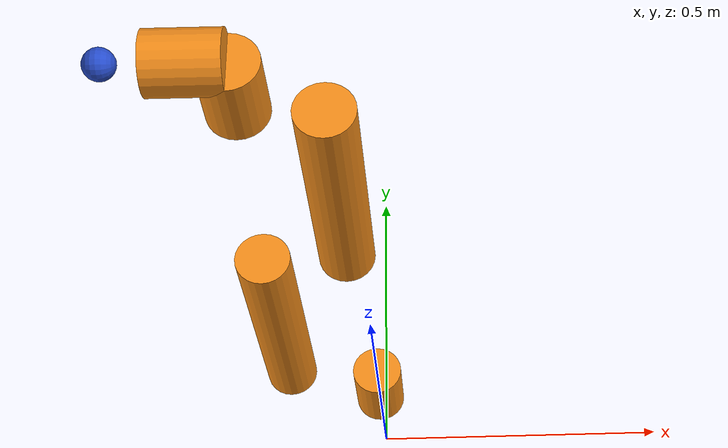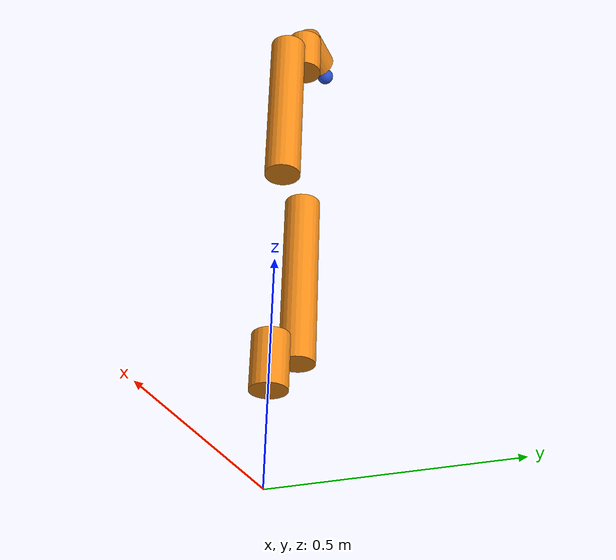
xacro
<?xml version="1.0"?>
<!-- Revolute-Revolute Manipulator -->
<robot name="robot" xmlns:xacro="http://www.ros.org/wiki/xacro">

  <!-- Import shared components -->
  <xacro:include filename="$(find robot_sim)/urdf/shared.xacro" />

  <!-- ros_control plugin -->
  <gazebo>
    <plugin name="gazebo_ros_control" filename="libgazebo_ros_control.so">
      <robotNamespace>/robot</robotNamespace>
      <robotSimType>gazebo_ros_control/DefaultRobotHWSim</robotSimType>
    </plugin>
  </gazebo>

  <!-- Constants for robot dimensions -->
  <xacro:property name="link_radius" value="0.04" />

  <xacro:property name="offset_x" value="0" />
  <xacro:property name="offset_y" value="0" />
  <xacro:property name="offset_z" value="0.2" />

  <xacro:property name="link0_length" value="0.1215" />
  <xacro:property name="link1_length" value="0.408" />
  <xacro:property name="link2_length" value="0.376" />
  <xacro:property name="link3_length" value="0.1025" />
  <xacro:property name="link4_length" value="0.094" />
  <xacro:property name="effector_length" value="0.05" />

  <xacro:property name="link1_d" value="-0.1405" />
  <xacro:property name="link2_d" value="0.1215" />
  <xacro:property name="link3_d" value="-0.1025" />

  <xacro:property name="joint0_low" value="-0.000006" />
  <xacro:property name="joint0_high" value="3.053448" />
  <xacro:property name="joint1_low" value="-1.571984" />
  <xacro:property name="joint1_high" value="1.571984" />
  <xacro:property name="joint2_low" value="-1.529065" />
  <xacro:property name="joint2_high" value="1.571069" />
  <xacro:property name="joint3_low" value="-0.785398" />
  <xacro:property name="joint3_high" value="0.785398" />
  <xacro:property name="joint4_low" value="-3.053450" />
  <xacro:property name="joint4_high" value="3.053439" />

  <xacro:property name="joint_effort_lim" value="2000" />
  <xacro:property name="joint_velocity_lim" value="15" />

  <!-- Enable self-collision -->
  <gazebo>
    <self_collide>false</self_collide>
  </gazebo>

  <!-- World link -->
  <link name="world"/>

  <!-- Joint 0 -->
  <joint name="joint0" type="revolute">
    <parent link="world"/>
    <child link="link0"/>
    <origin xyz="${offset_x} ${offset_y} ${offset_z}" rpy="0 0 ${-pi/2}"/>
    <axis xyz="0 0 1"/>
    <limit lower="${joint0_low}" upper="${joint0_high}" effort="${joint_effort_lim}" velocity="${joint_velocity_lim}"/>
    <dynamics damping="0.7"/>
  </joint>

  <transmission name="tran0">
    <type>transmission_interface/SimpleTransmission</type>
    <joint name="joint0">
      <hardwareInterface>hardware_interface/PositionJointInterface</hardwareInterface>
    </joint>
    <actuator name="motor0">
      <hardwareInterface>hardware_interface/PositionJointInterface</hardwareInterface>
      <mechanicalReduction>1</mechanicalReduction>
    </actuator>
  </transmission>

  <!-- Link 0 -->
  <link name="link0">

    <visual>
      <origin xyz="0 0 ${link0_length/2}" rpy="0 0 0"/>
      <geometry>
	      <cylinder radius="${link_radius}" length="${link0_length}" />
      </geometry>
      <material name="orange"/>
    </visual>

    <inertial>
      <origin xyz="0 0 ${link0_length/2}" rpy="0 0 0" />
      <mass value="1.0"/>
      <inertia
        ixx="1.0" ixy="0.0" ixz="0.0"
        iyy="1.0" iyz="0.0"
        izz="1.0"/>
    </inertial>
  </link>

  <gazebo reference="link0">
    <material>Gazebo/Orange</material>
  </gazebo>

  <!-- Joint 1 -->
  <joint name="joint1" type="revolute">
    <parent link="link0" />
    <child link="link1" />
    <origin xyz="0 ${link1_d} ${link0_length}" rpy="0 0 0" />
    <axis xyz="0 1 0" />
    <limit lower="${joint1_low}" upper="${joint1_high}" effort="${joint_effort_lim}" velocity="${joint_velocity_lim}"/>
    <dynamics damping="0.5" />
  </joint>

  <transmission name="tran1">
    <type>transmission_interface/SimpleTransmission</type>
    <joint name="joint1">
      <hardwareInterface>hardware_interface/PositionJointInterface</hardwareInterface>
    </joint>
    <actuator name="motor1">
      <hardwareInterface>hardware_interface/PositionJointInterface</hardwareInterface>
      <mechanicalReduction>1</mechanicalReduction>
    </actuator>
  </transmission>

  <!-- Link 1 -->
  <link name="link1">
    <collision>
      <origin xyz="0 0 ${link1_length/2}" rpy="0 0 0"/>
      <geometry>
	      <cylinder radius="${link_radius}" length="${link1_length}" />
      </geometry>
    </collision>

    <visual>
      <origin xyz="0 0 ${link1_length/2}" rpy="0 0 0"/>
      <geometry>
	      <cylinder radius="${link_radius}" length="${link1_length}" />
      </geometry>
      <material name="orange"/>
    </visual>

    <inertial>
      <origin xyz="0 0 ${link1_length/2}" rpy="0 0 0"/>
      <mass value="1.0"/>
      <inertia
        ixx="1.0" ixy="0.0" ixz="0.0"
        iyy="1.0" iyz="0.0"
        izz="1.0"/>
    </inertial>
  </link>

  <gazebo reference="link1">
    <material>Gazebo/Orange</material>
  </gazebo>

  <gazebo reference="link1">
    <sensor name="link1_contact_sensor" type="contact">
      <always_on>true</always_on>
      <update_rate>${sensor_update_rate}</update_rate>
      <visualize>false</visualize>
      <contact>
        <collision>link1_collision</collision>
      </contact>
      <plugin name="gazebo_ros_bumper_controller" filename="libgazebo_ros_bumper.so">
        <bumperTopicName>/link1_bumper</bumperTopicName>
      </plugin>
    </sensor>
  </gazebo>

  <!-- Joint 2 -->
  <joint name="joint2" type="revolute">
    <parent link="link1" />
    <child link="link2" />
    <origin xyz="0 ${link2_d} ${link1_length}" rpy="0 0 0" />
    <axis xyz="0 1 0" />
    <limit lower="${joint2_low}" upper="${joint2_high}" effort="${joint_effort_lim}" velocity="${joint_velocity_lim}"/>
    <dynamics damping="0.5" />
  </joint>

  <transmission name="tran2">
    <type>transmission_interface/SimpleTransmission</type>
    <joint name="joint2">
      <hardwareInterface>hardware_interface/PositionJointInterface</hardwareInterface>
    </joint>
    <actuator name="motor2">
      <hardwareInterface>hardware_interface/PositionJointInterface</hardwareInterface>
      <mechanicalReduction>1</mechanicalReduction>
    </actuator>
  </transmission>

  <!-- Link 2 -->
  <link name="link2">
    <collision>
      <origin xyz="0 0 ${link2_length/2}" rpy="0 0 0"/>
      <geometry>
	      <cylinder radius="${link_radius}" length="${link2_length}" />
      </geometry>
    </collision>

    <visual>
      <origin xyz="0 0 ${link2_length/2}" rpy="0 0 0"/>
      <geometry>
	      <cylinder radius="${link_radius}" length="${link2_length}" />
      </geometry>
      <material name="orange"/>
    </visual>

    <inertial>
      <origin xyz="0 0 ${link2_length/2}" rpy="0 0 0"/>
      <mass value="1.0"/>
      <inertia
        ixx="1.0" ixy="0.0" ixz="0.0"
        iyy="1.0" iyz="0.0"
        izz="1.0"/>
    </inertial>
  </link>

  <gazebo reference="link2">
    <material>Gazebo/Orange</material>
  </gazebo>

  <gazebo reference="link2">
    <sensor name="link2_contact_sensor" type="contact">
      <always_on>true</always_on>
      <update_rate>${sensor_update_rate}</update_rate>
      <visualize>false</visualize>
      <contact>
        <collision>link2_collision</collision>
      </contact>
      <plugin name="gazebo_ros_bumper_controller" filename="libgazebo_ros_bumper.so">
        <bumperTopicName>/link2_bumper</bumperTopicName>
      </plugin>
    </sensor>
  </gazebo>

  <!-- Joint 3 -->
  <joint name="joint3" type="revolute">
    <parent link="link2" />
    <child link="link3" />
    <origin xyz="0 ${link3_d} ${link2_length}" rpy="0 0 0" />
    <axis xyz="0 1 0" />
    <limit lower="${joint3_low}" upper="${joint3_high}" effort="${joint_effort_lim}" velocity="${joint_velocity_lim}"/>
    <dynamics damping="0.5" />
  </joint>

  <transmission name="tran3">
    <type>transmission_interface/SimpleTransmission</type>
    <joint name="joint3">
      <hardwareInterface>hardware_interface/PositionJointInterface</hardwareInterface>
    </joint>
    <actuator name="motor3">
      <hardwareInterface>hardware_interface/PositionJointInterface</hardwareInterface>
      <mechanicalReduction>1</mechanicalReduction>
    </actuator>
  </transmission>

  <!-- Link 3 -->
  <link name="link3">
    <collision>
      <origin xyz="0 0 ${link3_length/2}" rpy="0 0 0"/>
      <geometry>
	      <cylinder radius="${link_radius}" length="${link3_length}" />
      </geometry>
    </collision>

    <visual>
      <origin xyz="0 0 ${link3_length/2}" rpy="0 0 0"/>
      <geometry>
	      <cylinder radius="${link_radius}" length="${link3_length}" />
      </geometry>
      <material name="orange"/>
    </visual>

    <inertial>
      <origin xyz="0 0 ${link3_length/2}" rpy="0 0 0"/>
      <mass value="1.0"/>
      <inertia
        ixx="1.0" ixy="0.0" ixz="0.0"
        iyy="1.0" iyz="0.0"
        izz="1.0"/>
    </inertial>
  </link>

  <gazebo reference="link3">
    <material>Gazebo/Orange</material>
  </gazebo>

  <gazebo reference="link3">
    <sensor name="link3_contact_sensor" type="contact">
      <always_on>true</always_on>
      <update_rate>${sensor_update_rate}</update_rate>
      <visualize>false</visualize>
      <contact>
        <collision>link3_collision</collision>
      </contact>
      <plugin name="gazebo_ros_bumper_controller" filename="libgazebo_ros_bumper.so">
        <bumperTopicName>/link3_bumper</bumperTopicName>
      </plugin>
    </sensor>
  </gazebo>

  <!-- Joint 4 -->
  <joint name="joint4" type="revolute">
    <parent link="link3" />
    <child link="link4" />
    <origin xyz="0 0 ${link3_length}" rpy="${PI/2} 0 0" />
    <axis xyz="0 1 0" />
    <limit lower="${joint4_low}" upper="${joint4_high}" effort="${joint_effort_lim}" velocity="${joint_velocity_lim}"/>
    <dynamics damping="0.5" />
  </joint>

  <transmission name="tran4">
    <type>transmission_interface/SimpleTransmission</type>
    <joint name="joint4">
      <hardwareInterface>hardware_interface/PositionJointInterface</hardwareInterface>
    </joint>
    <actuator name="motor4">
      <hardwareInterface>hardware_interface/PositionJointInterface</hardwareInterface>
      <mechanicalReduction>1</mechanicalReduction>
    </actuator>
  </transmission>

  <!-- Link 4 -->
  <link name="link4">
    <collision>
      <origin xyz="0 0 ${link4_length/2}" rpy="0 0 0"/>
      <geometry>
	      <cylinder radius="${link_radius}" length="${link4_length}" />
      </geometry>
    </collision>

    <visual>
      <origin xyz="0 0 ${link4_length/2}" rpy="0 0 0"/>
      <geometry>
	      <cylinder radius="${link_radius}" length="${link4_length}" />
      </geometry>
      <material name="orange"/>
    </visual>

    <inertial>
      <origin xyz="0 0 ${link4_length/2}" rpy="0 0 0"/>
      <mass value="1.0"/>
      <inertia
        ixx="1.0" ixy="0.0" ixz="0.0"
        iyy="1.0" iyz="0.0"
        izz="1.0"/>
    </inertial>
  </link>

  <gazebo reference="link4">
    <material>Gazebo/Orange</material>
  </gazebo>

  <gazebo reference="link4">
    <sensor name="link4_contact_sensor" type="contact">
      <always_on>true</always_on>
      <update_rate>${sensor_update_rate}</update_rate>
      <visualize>false</visualize>
      <contact>
        <collision>link4_collision</collision>
      </contact>
      <plugin name="gazebo_ros_bumper_controller" filename="libgazebo_ros_bumper.so">
        <bumperTopicName>/link4_bumper</bumperTopicName>
      </plugin>
    </sensor>
  </gazebo>

  <!-- Joint 5 -->
  <joint name="joint5" type="continuous">
    <parent link="link4" />
    <child link="effector" />
    <origin xyz="0 0 ${link4_length + effector_length}" rpy="0 0 0" />
    <axis xyz="0 0 1" />
    <dynamics damping="0.5" />
  </joint>

  <!-- Effector -->
  <link name="effector">
    <visual>
      <origin xyz="0 0 0" rpy="0 0 0" />
      <geometry>
	      <sphere radius="${marker_point_radius}" />
      </geometry>
      <material name="blue" />
    </visual>

    <inertial>
      <origin xyz="0 0 0" rpy="0 0 0" />
      <mass value="0.1" />
      <inertia
        ixx="1.0" ixy="0.0" ixz="0.0"
        iyy="1.0" iyz="0.0"
        izz="1.0" />
    </inertial>
  </link>

  <gazebo reference="effector">
    <material>Gazebo/Blue</material>
  </gazebo>

</robot>

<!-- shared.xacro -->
<robot xmlns:xacro="http://www.ros.org/wiki/xacro">

  <!-- Import Rviz colors -->
  <xacro:include filename="$(find robot_sim)/urdf/materials.xacro" />

  <!-- Math constants -->
  <xacro:property name="PI" value="3.1415926535897931"/>

  <!-- Sensor parameters -->
  <xacro:property name="sensor_update_rate" value="50.0"/>

  <!-- Marker parameters -->
  <xacro:property name="marker_point_radius" value="0.02"/>

</robot>
